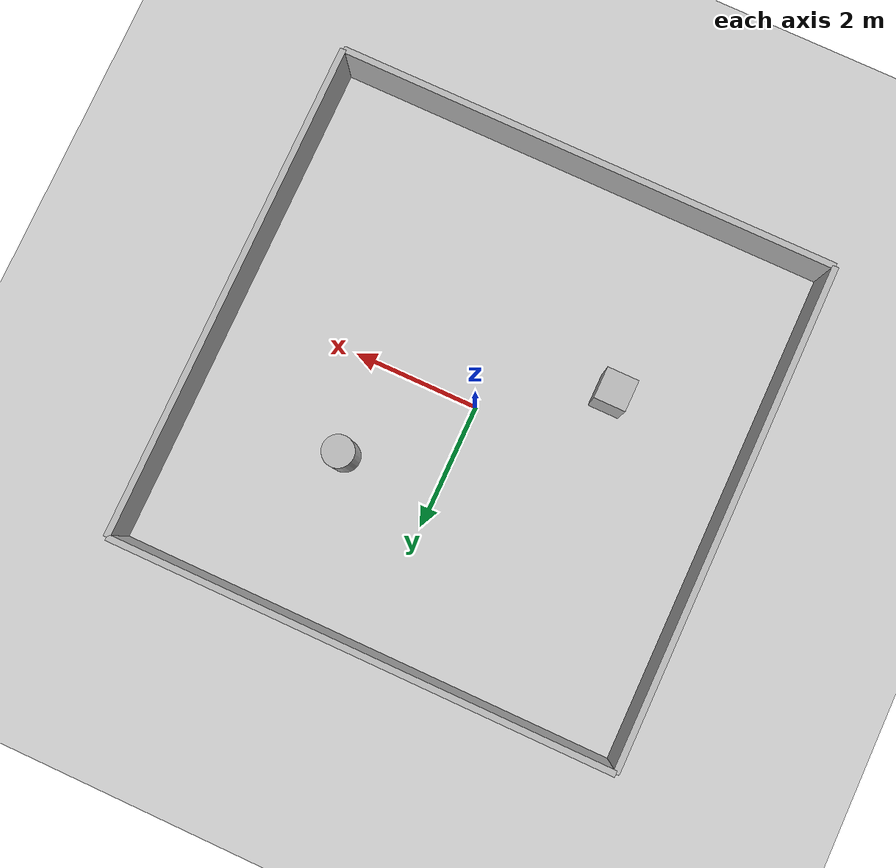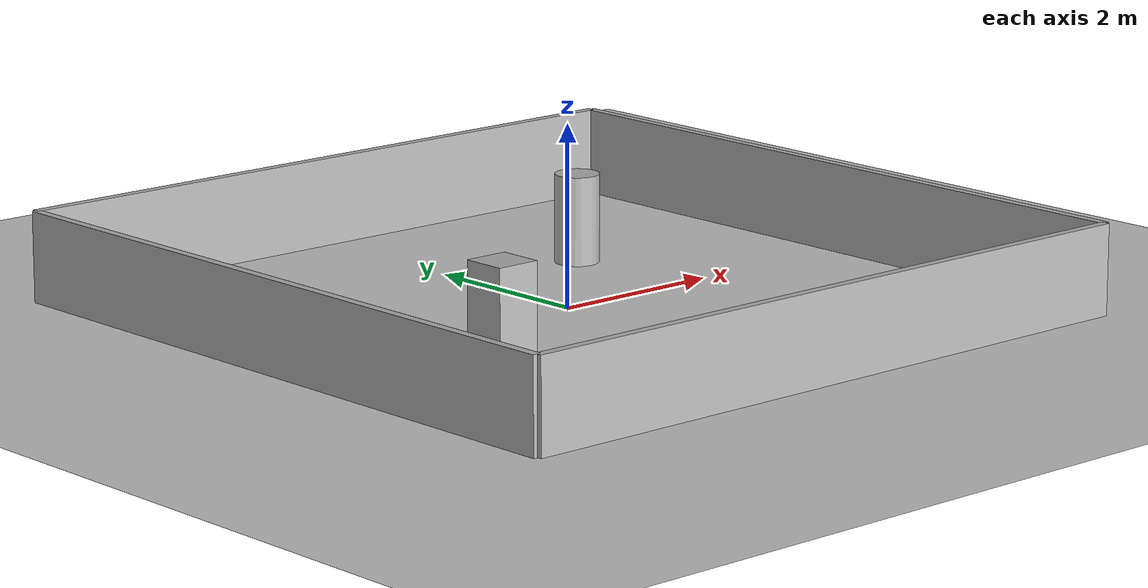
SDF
<?xml version="1.0" ?>
<sdf version="1.6">
  <world name="minimal">

    <include>
      <uri>model://sun</uri>
    </include>
    <include>
      <uri>model://ground_plane</uri>
    </include>

    <!-- 一个 8x8 的房间，四面墙，供 SLAM 建图测试 -->
    <model name="walls">
      <static>true</static>

      <link name="wall_north">
        <pose>0 4 0.5 0 0 0</pose>
        <collision name="c"><geometry><box><size>8 0.1 1</size></box></geometry></collision>
        <visual name="v"><geometry><box><size>8 0.1 1</size></box></geometry></visual>
      </link>

      <link name="wall_south">
        <pose>0 -4 0.5 0 0 0</pose>
        <collision name="c"><geometry><box><size>8 0.1 1</size></box></geometry></collision>
        <visual name="v"><geometry><box><size>8 0.1 1</size></box></geometry></visual>
      </link>

      <link name="wall_east">
        <pose>4 0 0.5 0 0 0</pose>
        <collision name="c"><geometry><box><size>0.1 8 1</size></box></geometry></collision>
        <visual name="v"><geometry><box><size>0.1 8 1</size></box></geometry></visual>
      </link>

      <link name="wall_west">
        <pose>-4 0 0.5 0 0 0</pose>
        <collision name="c"><geometry><box><size>0.1 8 1</size></box></geometry></collision>
        <visual name="v"><geometry><box><size>0.1 8 1</size></box></geometry></visual>
      </link>
    </model>

    <!-- 两个障碍柱子，增加地图特征 -->
    <model name="pillar_1">
      <static>true</static>
      <link name="link">
        <pose>1.5 1.5 0.5 0 0 0</pose>
        <collision name="c"><geometry><cylinder><radius>0.25</radius><length>1</length></cylinder></geometry></collision>
        <visual name="v"><geometry><cylinder><radius>0.25</radius><length>1</length></cylinder></geometry></visual>
      </link>
    </model>

    <model name="pillar_2">
      <static>true</static>
      <link name="link">
        <pose>-1.8 -1.0 0.5 0 0 0</pose>
        <collision name="c"><geometry><box><size>0.5 0.5 1</size></box></geometry></collision>
        <visual name="v"><geometry><box><size>0.5 0.5 1</size></box></geometry></visual>
      </link>
    </model>

  </world>
</sdf>
